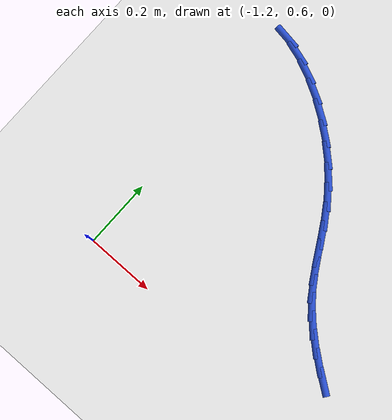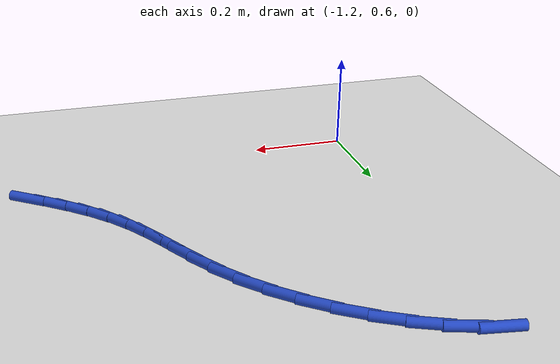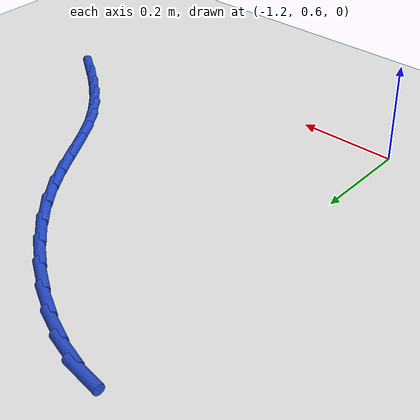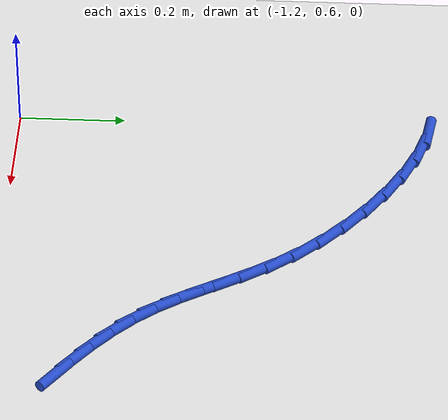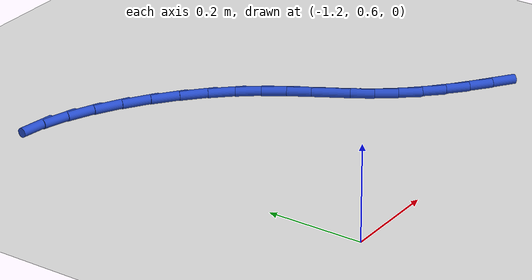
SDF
<sdf version="1.6">
 <world name="default">
  <model name="ground_plane">
   <static>1</static>
   <link name="link">
    <collision name="collision">
     <geometry><plane><normal>0 0 1</normal><size>100 100</size></plane></geometry>
     <surface><friction><ode><mu>100</mu><mu2>50</mu2></ode></friction></surface>
    </collision>
    <visual name="visual">
     <cast_shadows>0</cast_shadows>
     <geometry><plane><normal>0 0 1</normal><size>100 100</size></plane></geometry>
     <material>
      <script><uri>file://media/materials/scripts/gazebo.material</uri><name>Gazebo/WhiteGlow</name></script>
     </material>
    </visual>
   </link>
  </model>
  <model name="line">
   <link name="link_18">
    <pose>-0.47922375587573746 0.7283744944477879 0.01 0 1.57 -0.625890202995978</pose>
    <collision name="collision">
     <geometry><cylinder><radius>0.01</radius><length>0.08</length></cylinder></geometry>
    </collision>
    <visual name="visual">
     <material>
      <script><name>Gazebo/Blue</name><uri>file://media/materials/scripts/gazebo.material</uri></script>
     </material>
     <geometry><cylinder><radius>0.01</radius><length>0.08</length></cylinder></geometry>
    </visual>
   </link>
   <link name="link_19">
    <pose>-0.521559257998867 0.7589762422485866 0.01 0 1.57 -0.6689343251122071</pose>
    <collision name="collision">
     <geometry><cylinder><radius>0.01</radius><length>0.08</length></cylinder></geometry>
    </collision>
    <visual name="visual">
     <material>
      <script><name>Gazebo/Blue</name><uri>file://media/materials/scripts/gazebo.material</uri></script>
     </material>
     <geometry><cylinder><radius>0.01</radius><length>0.08</length></cylinder></geometry>
    </visual>
   </link>
   <link name="link_20">
    <pose>-0.5618819494134609 0.7908521795641648 0.01 0 1.57 -0.7276596073566541</pose>
    <collision name="collision">
     <geometry><cylinder><radius>0.01</radius><length>0.08</length></cylinder></geometry>
    </collision>
    <visual name="visual">
     <material>
      <script><name>Gazebo/Blue</name><uri>file://media/materials/scripts/gazebo.material</uri></script>
     </material>
     <geometry><cylinder><radius>0.01</radius><length>0.08</length></cylinder></geometry>
    </visual>
   </link>
   <link name="link_21">
    <pose>-0.599565197347922 0.8244170845168208 0.01 0 1.57 -0.8032526452384804</pose>
    <collision name="collision">
     <geometry><cylinder><radius>0.01</radius><length>0.08</length></cylinder></geometry>
    </collision>
    <visual name="visual">
     <material>
      <script><name>Gazebo/Blue</name><uri>file://media/materials/scripts/gazebo.material</uri></script>
     </material>
     <geometry><cylinder><radius>0.01</radius><length>0.08</length></cylinder></geometry>
    </visual>
   </link>
   <link name="link_22">
    <pose>-0.6339823690306529 0.8600857352288527 0.01 0 1.57 -0.8958804146261714</pose>
    <collision name="collision">
     <geometry><cylinder><radius>0.01</radius><length>0.08</length></cylinder></geometry>
    </collision>
    <visual name="visual">
     <material>
      <script><name>Gazebo/Blue</name><uri>file://media/materials/scripts/gazebo.material</uri></script>
     </material>
     <geometry><cylinder><radius>0.01</radius><length>0.08</length></cylinder></geometry>
    </visual>
   </link>
   <link name="link_23">
    <pose>-0.6645336790737719 0.8982611777777064 0.01 0 1.57 -0.9832128160586784</pose>
    <collision name="collision">
     <geometry><cylinder><radius>0.01</radius><length>0.08</length></cylinder></geometry>
    </collision>
    <visual name="visual">
     <material>
      <script><name>Gazebo/Blue</name><uri>file://media/materials/scripts/gazebo.material</uri></script>
     </material>
     <geometry><cylinder><radius>0.01</radius><length>0.08</length></cylinder></geometry>
    </visual>
   </link>
   <link name="link_24">
    <pose>-0.6916105100621098 0.9389133275031689 0.01 0 1.57 -1.0351899689098694</pose>
    <collision name="collision">
     <geometry><cylinder><radius>0.01</radius><length>0.08</length></cylinder></geometry>
    </collision>
    <visual name="visual">
     <material>
      <script><name>Gazebo/Blue</name><uri>file://media/materials/scripts/gazebo.material</uri></script>
     </material>
     <geometry><cylinder><radius>0.01</radius><length>0.08</length></cylinder></geometry>
    </visual>
   </link>
   <link name="link_25">
    <pose>-0.7168622190427819 0.9814623771734721 0.01 0 1.57 -1.0497431225457825</pose>
    <collision name="collision">
     <geometry><cylinder><radius>0.01</radius><length>0.08</length></cylinder></geometry>
    </collision>
    <visual name="visual">
     <material>
      <script><name>Gazebo/Blue</name><uri>file://media/materials/scripts/gazebo.material</uri></script>
     </material>
     <geometry><cylinder><radius>0.01</radius><length>0.08</length></cylinder></geometry>
    </visual>
   </link>
   <link name="link_26">
    <pose>-0.7420193240437293 1.0252930529997522 0.01 0 1.57 -1.0288117347057388</pose>
    <collision name="collision">
     <geometry><cylinder><radius>0.01</radius><length>0.08</length></cylinder></geometry>
    </collision>
    <visual name="visual">
     <material>
      <script><name>Gazebo/Blue</name><uri>file://media/materials/scripts/gazebo.material</uri></script>
     </material>
     <geometry><cylinder><radius>0.01</radius><length>0.08</length></cylinder></geometry>
    </visual>
   </link>
   <link name="link_27">
    <pose>-0.768812343092894 1.069790081193147 0.01 0 1.57 -0.9756680608584856</pose>
    <collision name="collision">
     <geometry><cylinder><radius>0.01</radius><length>0.08</length></cylinder></geometry>
    </collision>
    <visual name="visual">
     <material>
      <script><name>Gazebo/Blue</name><uri>file://media/materials/scripts/gazebo.material</uri></script>
     </material>
     <geometry><cylinder><radius>0.01</radius><length>0.08</length></cylinder></geometry>
    </visual>
   </link>
   <link name="link_28">
    <pose>-0.7989717942182168 1.1143381879647911 0.01 0 1.57 -0.8957525189096694</pose>
    <collision name="collision">
     <geometry><cylinder><radius>0.01</radius><length>0.08</length></cylinder></geometry>
    </collision>
    <visual name="visual">
     <material>
      <script><name>Gazebo/Blue</name><uri>file://media/materials/scripts/gazebo.material</uri></script>
     </material>
     <geometry><cylinder><radius>0.01</radius><length>0.08</length></cylinder></geometry>
    </visual>
   </link>
   <link name="link_29">
    <pose>-0.8341761237198331 1.1583162883378422 0.01 0 1.57 -0.8094557008551096</pose>
    <collision name="collision">
     <geometry><cylinder><radius>0.01</radius><length>0.08</length></cylinder></geometry>
    </collision>
    <visual name="visual">
     <material>
      <script><name>Gazebo/Blue</name><uri>file://media/materials/scripts/gazebo.material</uri></script>
     </material>
     <geometry><cylinder><radius>0.01</radius><length>0.08</length></cylinder></geometry>
    </visual>
   </link>
   <link name="link_30">
    <pose>-0.874815390832017 1.200959513755599 0.01 0 1.57 -0.7301495612855831</pose>
    <collision name="collision">
     <geometry><cylinder><radius>0.01</radius><length>0.08</length></cylinder></geometry>
    </collision>
    <visual name="visual">
     <material>
      <script><name>Gazebo/Blue</name><uri>file://media/materials/scripts/gazebo.material</uri></script>
     </material>
     <geometry><cylinder><radius>0.01</radius><length>0.08</length></cylinder></geometry>
    </visual>
   </link>
   <link name="link_31">
    <pose>-0.9199387462291341 1.2413533506997603 0.01 0 1.57 -0.6536618966945924</pose>
    <collision name="collision">
     <geometry><cylinder><radius>0.01</radius><length>0.08</length></cylinder></geometry>
    </collision>
    <visual name="visual">
     <material>
      <script><name>Gazebo/Blue</name><uri>file://media/materials/scripts/gazebo.material</uri></script>
     </material>
     <geometry><cylinder><radius>0.01</radius><length>0.08</length></cylinder></geometry>
    </visual>
   </link>
   <link name="link_32">
    <pose>-0.9685327593015145 1.2785763016009646 0.01 0 1.57 -0.5756486519359343</pose>
    <collision name="collision">
     <geometry><cylinder><radius>0.01</radius><length>0.08</length></cylinder></geometry>
    </collision>
    <visual name="visual">
     <material>
      <script><name>Gazebo/Blue</name><uri>file://media/materials/scripts/gazebo.material</uri></script>
     </material>
     <geometry><cylinder><radius>0.01</radius><length>0.08</length></cylinder></geometry>
    </visual>
   </link>
   <link name="link_33">
    <pose>-1.019583999439489 1.311706868889852 0.01 0 1.57 -0.49172547068154077</pose>
    <collision name="collision">
     <geometry><cylinder><radius>0.01</radius><length>0.08</length></cylinder></geometry>
    </collision>
    <visual name="visual">
     <material>
      <script><name>Gazebo/Blue</name><uri>file://media/materials/scripts/gazebo.material</uri></script>
     </material>
     <geometry><cylinder><radius>0.01</radius><length>0.08</length></cylinder></geometry>
    </visual>
   </link>
   <link name="link_34">
    <pose>-1.0720790360333885 1.3398235549970618 0.01 0 1.57 -0.39686705837718605</pose>
    <collision name="collision">
     <geometry><cylinder><radius>0.01</radius><length>0.08</length></cylinder></geometry>
    </collision>
    <visual name="visual">
     <material>
      <script><name>Gazebo/Blue</name><uri>file://media/materials/scripts/gazebo.material</uri></script>
     </material>
     <geometry><cylinder><radius>0.01</radius><length>0.08</length></cylinder></geometry>
    </visual>
   </link>
   <link name="link_35">
    <pose>-1.125004438473543 1.362004862353234 0.01 0 1.57 -0.2848135399150614</pose>
    <collision name="collision">
     <geometry><cylinder><radius>0.01</radius><length>0.08</length></cylinder></geometry>
    </collision>
    <visual name="visual">
     <material>
      <script><name>Gazebo/Blue</name><uri>file://media/materials/scripts/gazebo.material</uri></script>
     </material>
     <geometry><cylinder><radius>0.01</radius><length>0.08</length></cylinder></geometry>
    </visual>
   </link>
   <link name="link_36">
    <pose>-1.177346776150283 1.3773292933890078 0.01 0 1.57 -0.14762121172356363</pose>
    <collision name="collision">
     <geometry><cylinder><radius>0.01</radius><length>0.08</length></cylinder></geometry>
    </collision>
    <visual name="visual">
     <material>
      <script><name>Gazebo/Blue</name><uri>file://media/materials/scripts/gazebo.material</uri></script>
     </material>
     <geometry><cylinder><radius>0.01</radius><length>0.08</length></cylinder></geometry>
    </visual>
   </link>
  </model>
 </world>
</sdf>
